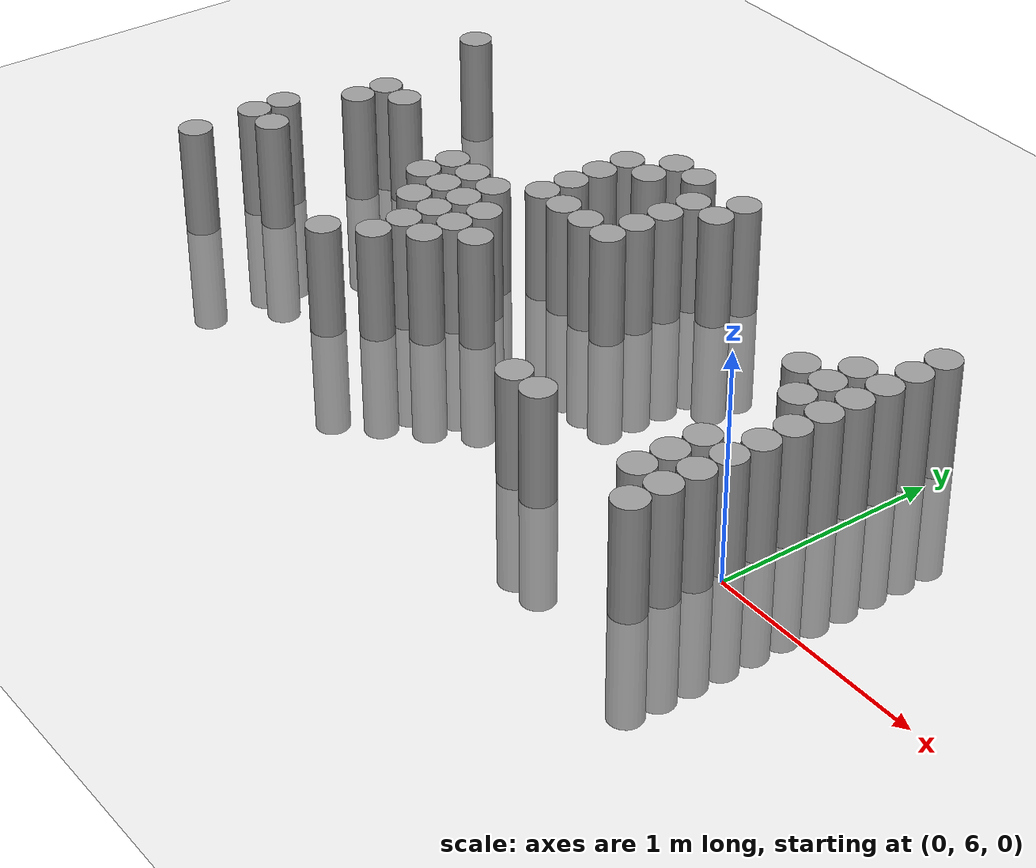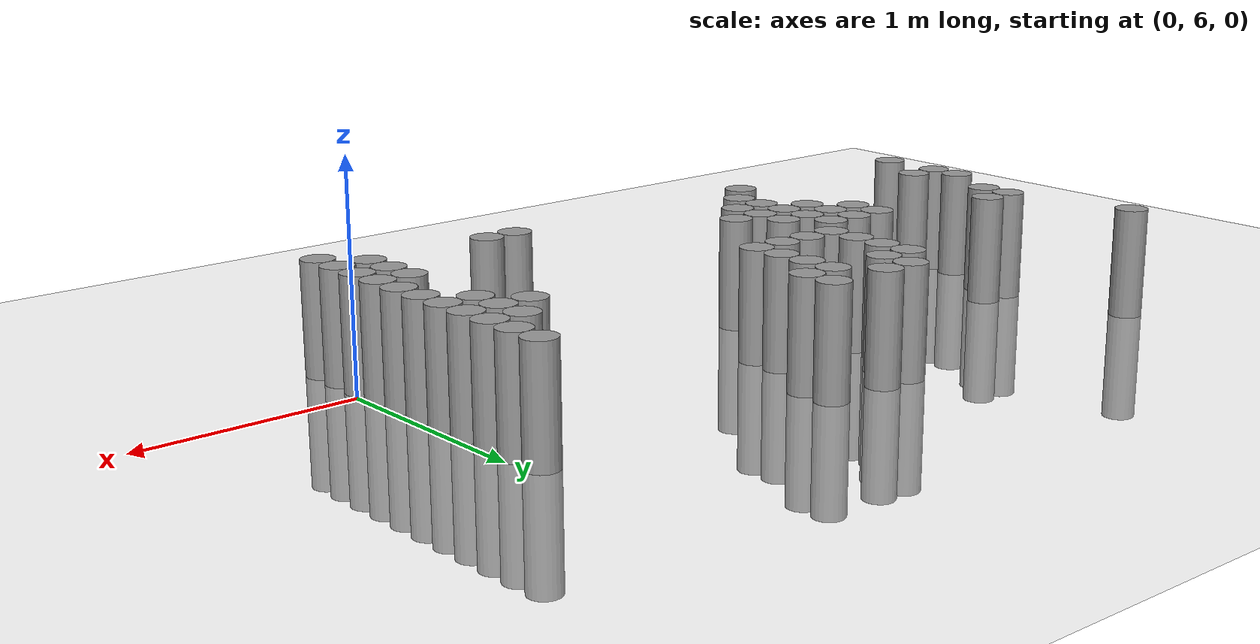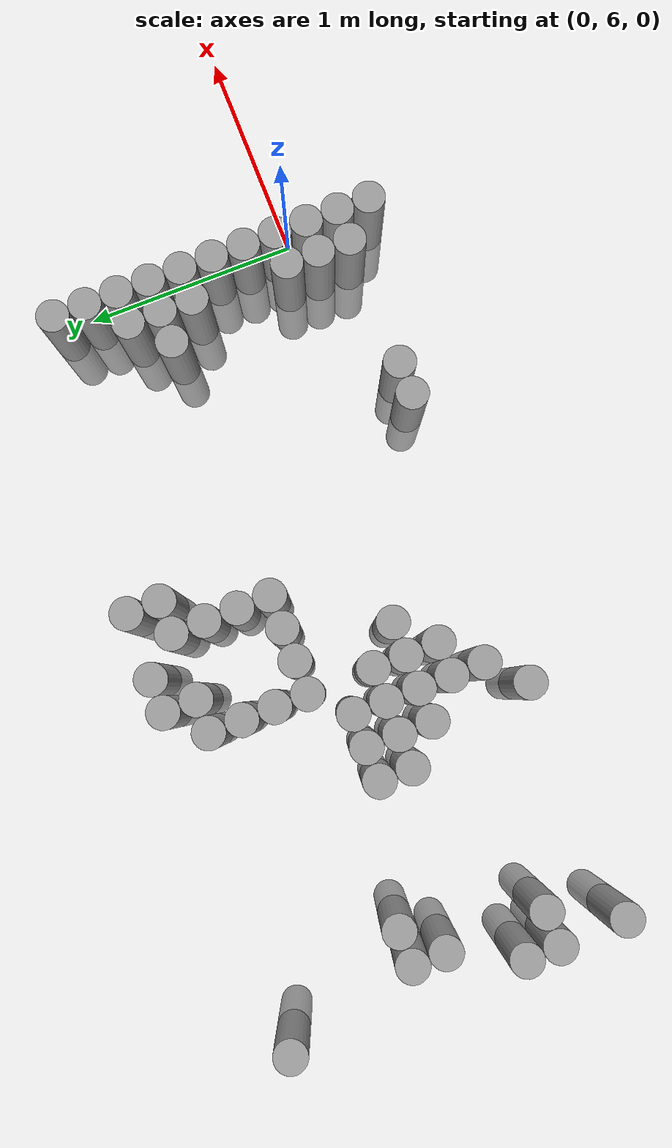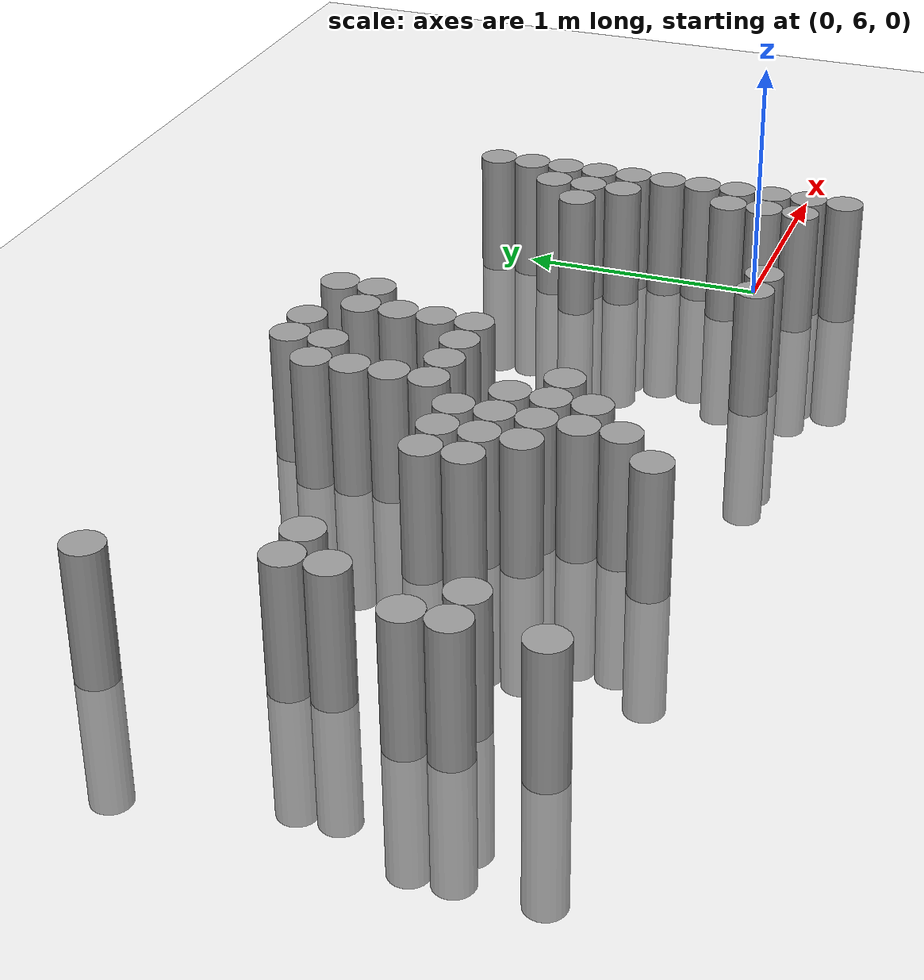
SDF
<sdf version="1.6">
 <world name="default">
  <model name="ground_plane">
   <static>1</static>
   <static>1</static>
   <link name="link">
    <collision name="collision">
     <geometry><plane><normal>0 0 1</normal><size>100 100</size></plane></geometry>
     <surface><friction><ode><mu>100</mu><mu2>50</mu2></ode></friction></surface>
    </collision>
    <visual name="visual">
     <cast_shadows>0</cast_shadows>
     <geometry><plane><normal>0 0 1</normal><size>100 100</size></plane></geometry>
     <material>
      <script><uri>file://media/materials/scripts/gazebo.material</uri><name>Gazebo/Grey</name></script>
     </material>
    </visual>
   </link>
  </model>
  <model name="unit_cylinder_172">
   <static>1</static>
   <pose>-3.375000 5.775000 0.000000 0.000000 0.000000 0.000000</pose>
   <link name="link">
    <inertial>
     <mass>1</mass>
     <inertia><ixx>0.145833</ixx><ixy>0</ixy><ixz>0</ixz><iyy>0.145833</iyy><iyz>0</iyz><izz>0.125</izz></inertia>
    </inertial>
    <collision name="collision">
     <geometry><cylinder><radius>0.075000</radius><length>1</length></cylinder></geometry>
    </collision>
    <visual name="visual">
     <geometry><cylinder><radius>0.075000</radius><length>1</length></cylinder></geometry>
     <material>
      <script><name>Gazebo/Grey</name><uri>file://media/materials/scripts/gazebo.material</uri></script>
     </material>
    </visual>
   </link>
  </model>
  <model name="unit_cylinder_173">
   <static>1</static>
   <pose>-3.375000 6.075000 0.000000 0.000000 0.000000 0.000000</pose>
   <link name="link">
    <inertial>
     <mass>1</mass>
     <inertia><ixx>0.145833</ixx><ixy>0</ixy><ixz>0</ixz><iyy>0.145833</iyy><iyz>0</iyz><izz>0.125</izz></inertia>
    </inertial>
    <collision name="collision">
     <geometry><cylinder><radius>0.075000</radius><length>1</length></cylinder></geometry>
    </collision>
    <visual name="visual">
     <geometry><cylinder><radius>0.075000</radius><length>1</length></cylinder></geometry>
     <material>
      <script><name>Gazebo/Grey</name><uri>file://media/materials/scripts/gazebo.material</uri></script>
     </material>
    </visual>
   </link>
  </model>
  <model name="unit_cylinder_174">
   <static>1</static>
   <pose>-3.375000 6.225000 0.000000 0.000000 0.000000 0.000000</pose>
   <link name="link">
    <inertial>
     <mass>1</mass>
     <inertia><ixx>0.145833</ixx><ixy>0</ixy><ixz>0</ixz><iyy>0.145833</iyy><iyz>0</iyz><izz>0.125</izz></inertia>
    </inertial>
    <collision name="collision">
     <geometry><cylinder><radius>0.075000</radius><length>1</length></cylinder></geometry>
    </collision>
    <visual name="visual">
     <geometry><cylinder><radius>0.075000</radius><length>1</length></cylinder></geometry>
     <material>
      <script><name>Gazebo/Grey</name><uri>file://media/materials/scripts/gazebo.material</uri></script>
     </material>
    </visual>
   </link>
  </model>
  <model name="unit_cylinder_175">
   <static>1</static>
   <pose>-3.375000 7.275000 0.000000 0.000000 0.000000 0.000000</pose>
   <link name="link">
    <inertial>
     <mass>1</mass>
     <inertia><ixx>0.145833</ixx><ixy>0</ixy><ixz>0</ixz><iyy>0.145833</iyy><iyz>0</iyz><izz>0.125</izz></inertia>
    </inertial>
    <collision name="collision">
     <geometry><cylinder><radius>0.075000</radius><length>1</length></cylinder></geometry>
    </collision>
    <visual name="visual">
     <geometry><cylinder><radius>0.075000</radius><length>1</length></cylinder></geometry>
     <material>
      <script><name>Gazebo/Grey</name><uri>file://media/materials/scripts/gazebo.material</uri></script>
     </material>
    </visual>
   </link>
  </model>
  <model name="unit_cylinder_180">
   <static>1</static>
   <pose>-3.225000 6.075000 0.000000 0.000000 0.000000 0.000000</pose>
   <link name="link">
    <inertial>
     <mass>1</mass>
     <inertia><ixx>0.145833</ixx><ixy>0</ixy><ixz>0</ixz><iyy>0.145833</iyy><iyz>0</iyz><izz>0.125</izz></inertia>
    </inertial>
    <collision name="collision">
     <geometry><cylinder><radius>0.075000</radius><length>1</length></cylinder></geometry>
    </collision>
    <visual name="visual">
     <geometry><cylinder><radius>0.075000</radius><length>1</length></cylinder></geometry>
     <material>
      <script><name>Gazebo/Grey</name><uri>file://media/materials/scripts/gazebo.material</uri></script>
     </material>
    </visual>
   </link>
  </model>
  <model name="unit_cylinder_181">
   <static>1</static>
   <pose>-3.225000 6.525000 0.000000 0.000000 0.000000 0.000000</pose>
   <link name="link">
    <inertial>
     <mass>1</mass>
     <inertia><ixx>0.145833</ixx><ixy>0</ixy><ixz>0</ixz><iyy>0.145833</iyy><iyz>0</iyz><izz>0.125</izz></inertia>
    </inertial>
    <collision name="collision">
     <geometry><cylinder><radius>0.075000</radius><length>1</length></cylinder></geometry>
    </collision>
    <visual name="visual">
     <geometry><cylinder><radius>0.075000</radius><length>1</length></cylinder></geometry>
     <material>
      <script><name>Gazebo/Grey</name><uri>file://media/materials/scripts/gazebo.material</uri></script>
     </material>
    </visual>
   </link>
  </model>
  <model name="unit_cylinder_182">
   <static>1</static>
   <pose>-3.225000 6.675000 0.000000 0.000000 0.000000 0.000000</pose>
   <link name="link">
    <inertial>
     <mass>1</mass>
     <inertia><ixx>0.145833</ixx><ixy>0</ixy><ixz>0</ixz><iyy>0.145833</iyy><iyz>0</iyz><izz>0.125</izz></inertia>
    </inertial>
    <collision name="collision">
     <geometry><cylinder><radius>0.075000</radius><length>1</length></cylinder></geometry>
    </collision>
    <visual name="visual">
     <geometry><cylinder><radius>0.075000</radius><length>1</length></cylinder></geometry>
     <material>
      <script><name>Gazebo/Grey</name><uri>file://media/materials/scripts/gazebo.material</uri></script>
     </material>
    </visual>
   </link>
  </model>
  <model name="unit_cylinder_185">
   <static>1</static>
   <pose>-3.075000 6.675000 0.000000 0.000000 0.000000 0.000000</pose>
   <link name="link">
    <inertial>
     <mass>1</mass>
     <inertia><ixx>0.145833</ixx><ixy>0</ixy><ixz>0</ixz><iyy>0.145833</iyy><iyz>0</iyz><izz>0.125</izz></inertia>
    </inertial>
    <collision name="collision">
     <geometry><cylinder><radius>0.075000</radius><length>1</length></cylinder></geometry>
    </collision>
    <visual name="visual">
     <geometry><cylinder><radius>0.075000</radius><length>1</length></cylinder></geometry>
     <material>
      <script><name>Gazebo/Grey</name><uri>file://media/materials/scripts/gazebo.material</uri></script>
     </material>
    </visual>
   </link>
  </model>
  <model name="unit_cylinder_190">
   <static>1</static>
   <pose>-2.475000 6.375000 0.000000 0.000000 0.000000 0.000000</pose>
   <link name="link">
    <inertial>
     <mass>1</mass>
     <inertia><ixx>0.145833</ixx><ixy>0</ixy><ixz>0</ixz><iyy>0.145833</iyy><iyz>0</iyz><izz>0.125</izz></inertia>
    </inertial>
    <collision name="collision">
     <geometry><cylinder><radius>0.075000</radius><length>1</length></cylinder></geometry>
    </collision>
    <visual name="visual">
     <geometry><cylinder><radius>0.075000</radius><length>1</length></cylinder></geometry>
     <material>
      <script><name>Gazebo/Grey</name><uri>file://media/materials/scripts/gazebo.material</uri></script>
     </material>
    </visual>
   </link>
  </model>
  <model name="unit_cylinder_191">
   <static>1</static>
   <pose>-2.475000 6.525000 0.000000 0.000000 0.000000 0.000000</pose>
   <link name="link">
    <inertial>
     <mass>1</mass>
     <inertia><ixx>0.145833</ixx><ixy>0</ixy><ixz>0</ixz><iyy>0.145833</iyy><iyz>0</iyz><izz>0.125</izz></inertia>
    </inertial>
    <collision name="collision">
     <geometry><cylinder><radius>0.075000</radius><length>1</length></cylinder></geometry>
    </collision>
    <visual name="visual">
     <geometry><cylinder><radius>0.075000</radius><length>1</length></cylinder></geometry>
     <material>
      <script><name>Gazebo/Grey</name><uri>file://media/materials/scripts/gazebo.material</uri></script>
     </material>
    </visual>
   </link>
  </model>
  <model name="unit_cylinder_195">
   <static>1</static>
   <pose>-2.325000 5.775000 0.000000 0.000000 0.000000 0.000000</pose>
   <link name="link">
    <inertial>
     <mass>1</mass>
     <inertia><ixx>0.145833</ixx><ixy>0</ixy><ixz>0</ixz><iyy>0.145833</iyy><iyz>0</iyz><izz>0.125</izz></inertia>
    </inertial>
    <collision name="collision">
     <geometry><cylinder><radius>0.075000</radius><length>1</length></cylinder></geometry>
    </collision>
    <visual name="visual">
     <geometry><cylinder><radius>0.075000</radius><length>1</length></cylinder></geometry>
     <material>
      <script><name>Gazebo/Grey</name><uri>file://media/materials/scripts/gazebo.material</uri></script>
     </material>
    </visual>
   </link>
  </model>
  <model name="unit_cylinder_196">
   <static>1</static>
   <pose>-2.325000 6.225000 0.000000 0.000000 0.000000 0.000000</pose>
   <link name="link">
    <inertial>
     <mass>1</mass>
     <inertia><ixx>0.145833</ixx><ixy>0</ixy><ixz>0</ixz><iyy>0.145833</iyy><iyz>0</iyz><izz>0.125</izz></inertia>
    </inertial>
    <collision name="collision">
     <geometry><cylinder><radius>0.075000</radius><length>1</length></cylinder></geometry>
    </collision>
    <visual name="visual">
     <geometry><cylinder><radius>0.075000</radius><length>1</length></cylinder></geometry>
     <material>
      <script><name>Gazebo/Grey</name><uri>file://media/materials/scripts/gazebo.material</uri></script>
     </material>
    </visual>
   </link>
  </model>
  <model name="unit_cylinder_197">
   <static>1</static>
   <pose>-2.325000 6.375000 0.000000 0.000000 0.000000 0.000000</pose>
   <link name="link">
    <inertial>
     <mass>1</mass>
     <inertia><ixx>0.145833</ixx><ixy>0</ixy><ixz>0</ixz><iyy>0.145833</iyy><iyz>0</iyz><izz>0.125</izz></inertia>
    </inertial>
    <collision name="collision">
     <geometry><cylinder><radius>0.075000</radius><length>1</length></cylinder></geometry>
    </collision>
    <visual name="visual">
     <geometry><cylinder><radius>0.075000</radius><length>1</length></cylinder></geometry>
     <material>
      <script><name>Gazebo/Grey</name><uri>file://media/materials/scripts/gazebo.material</uri></script>
     </material>
    </visual>
   </link>
  </model>
  <model name="unit_cylinder_198">
   <static>1</static>
   <pose>-2.325000 6.525000 0.000000 0.000000 0.000000 0.000000</pose>
   <link name="link">
    <inertial>
     <mass>1</mass>
     <inertia><ixx>0.145833</ixx><ixy>0</ixy><ixz>0</ixz><iyy>0.145833</iyy><iyz>0</iyz><izz>0.125</izz></inertia>
    </inertial>
    <collision name="collision">
     <geometry><cylinder><radius>0.075000</radius><length>1</length></cylinder></geometry>
    </collision>
    <visual name="visual">
     <geometry><cylinder><radius>0.075000</radius><length>1</length></cylinder></geometry>
     <material>
      <script><name>Gazebo/Grey</name><uri>file://media/materials/scripts/gazebo.material</uri></script>
     </material>
    </visual>
   </link>
  </model>
  <model name="unit_cylinder_204">
   <static>1</static>
   <pose>-2.175000 5.925000 0.000000 0.000000 0.000000 0.000000</pose>
   <link name="link">
    <inertial>
     <mass>1</mass>
     <inertia><ixx>0.145833</ixx><ixy>0</ixy><ixz>0</ixz><iyy>0.145833</iyy><iyz>0</iyz><izz>0.125</izz></inertia>
    </inertial>
    <collision name="collision">
     <geometry><cylinder><radius>0.075000</radius><length>1</length></cylinder></geometry>
    </collision>
    <visual name="visual">
     <geometry><cylinder><radius>0.075000</radius><length>1</length></cylinder></geometry>
     <material>
      <script><name>Gazebo/Grey</name><uri>file://media/materials/scripts/gazebo.material</uri></script>
     </material>
    </visual>
   </link>
  </model>
  <model name="unit_cylinder_205">
   <static>1</static>
   <pose>-2.175000 6.075000 0.000000 0.000000 0.000000 0.000000</pose>
   <link name="link">
    <inertial>
     <mass>1</mass>
     <inertia><ixx>0.145833</ixx><ixy>0</ixy><ixz>0</ixz><iyy>0.145833</iyy><iyz>0</iyz><izz>0.125</izz></inertia>
    </inertial>
    <collision name="collision">
     <geometry><cylinder><radius>0.075000</radius><length>1</length></cylinder></geometry>
    </collision>
    <visual name="visual">
     <geometry><cylinder><radius>0.075000</radius><length>1</length></cylinder></geometry>
     <material>
      <script><name>Gazebo/Grey</name><uri>file://media/materials/scripts/gazebo.material</uri></script>
     </material>
    </visual>
   </link>
  </model>
  <model name="unit_cylinder_206">
   <static>1</static>
   <pose>-2.175000 6.225000 0.000000 0.000000 0.000000 0.000000</pose>
   <link name="link">
    <inertial>
     <mass>1</mass>
     <inertia><ixx>0.145833</ixx><ixy>0</ixy><ixz>0</ixz><iyy>0.145833</iyy><iyz>0</iyz><izz>0.125</izz></inertia>
    </inertial>
    <collision name="collision">
     <geometry><cylinder><radius>0.075000</radius><length>1</length></cylinder></geometry>
    </collision>
    <visual name="visual">
     <geometry><cylinder><radius>0.075000</radius><length>1</length></cylinder></geometry>
     <material>
      <script><name>Gazebo/Grey</name><uri>file://media/materials/scripts/gazebo.material</uri></script>
     </material>
    </visual>
   </link>
  </model>
  <model name="unit_cylinder_207">
   <static>1</static>
   <pose>-2.175000 6.375000 0.000000 0.000000 0.000000 0.000000</pose>
   <link name="link">
    <inertial>
     <mass>1</mass>
     <inertia><ixx>0.145833</ixx><ixy>0</ixy><ixz>0</ixz><iyy>0.145833</iyy><iyz>0</iyz><izz>0.125</izz></inertia>
    </inertial>
    <collision name="collision">
     <geometry><cylinder><radius>0.075000</radius><length>1</length></cylinder></geometry>
    </collision>
    <visual name="visual">
     <geometry><cylinder><radius>0.075000</radius><length>1</length></cylinder></geometry>
     <material>
      <script><name>Gazebo/Grey</name><uri>file://media/materials/scripts/gazebo.material</uri></script>
     </material>
    </visual>
   </link>
  </model>
  <model name="unit_cylinder_208">
   <static>1</static>
   <pose>-2.175000 6.525000 0.000000 0.000000 0.000000 0.000000</pose>
   <link name="link">
    <inertial>
     <mass>1</mass>
     <inertia><ixx>0.145833</ixx><ixy>0</ixy><ixz>0</ixz><iyy>0.145833</iyy><iyz>0</iyz><izz>0.125</izz></inertia>
    </inertial>
    <collision name="collision">
     <geometry><cylinder><radius>0.075000</radius><length>1</length></cylinder></geometry>
    </collision>
    <visual name="visual">
     <geometry><cylinder><radius>0.075000</radius><length>1</length></cylinder></geometry>
     <material>
      <script><name>Gazebo/Grey</name><uri>file://media/materials/scripts/gazebo.material</uri></script>
     </material>
    </visual>
   </link>
  </model>
  <model name="unit_cylinder_212">
   <static>1</static>
   <pose>-2.025000 6.075000 0.000000 0.000000 0.000000 0.000000</pose>
   <link name="link">
    <inertial>
     <mass>1</mass>
     <inertia><ixx>0.145833</ixx><ixy>0</ixy><ixz>0</ixz><iyy>0.145833</iyy><iyz>0</iyz><izz>0.125</izz></inertia>
    </inertial>
    <collision name="collision">
     <geometry><cylinder><radius>0.075000</radius><length>1</length></cylinder></geometry>
    </collision>
    <visual name="visual">
     <geometry><cylinder><radius>0.075000</radius><length>1</length></cylinder></geometry>
     <material>
      <script><name>Gazebo/Grey</name><uri>file://media/materials/scripts/gazebo.material</uri></script>
     </material>
    </visual>
   </link>
  </model>
  <model name="unit_cylinder_213">
   <static>1</static>
   <pose>-2.025000 6.225000 0.000000 0.000000 0.000000 0.000000</pose>
   <link name="link">
    <inertial>
     <mass>1</mass>
     <inertia><ixx>0.145833</ixx><ixy>0</ixy><ixz>0</ixz><iyy>0.145833</iyy><iyz>0</iyz><izz>0.125</izz></inertia>
    </inertial>
    <collision name="collision">
     <geometry><cylinder><radius>0.075000</radius><length>1</length></cylinder></geometry>
    </collision>
    <visual name="visual">
     <geometry><cylinder><radius>0.075000</radius><length>1</length></cylinder></geometry>
     <material>
      <script><name>Gazebo/Grey</name><uri>file://media/materials/scripts/gazebo.material</uri></script>
     </material>
    </visual>
   </link>
  </model>
  <model name="unit_cylinder_214">
   <static>1</static>
   <pose>-2.025000 6.375000 0.000000 0.000000 0.000000 0.000000</pose>
   <link name="link">
    <inertial>
     <mass>1</mass>
     <inertia><ixx>0.145833</ixx><ixy>0</ixy><ixz>0</ixz><iyy>0.145833</iyy><iyz>0</iyz><izz>0.125</izz></inertia>
    </inertial>
    <collision name="collision">
     <geometry><cylinder><radius>0.075000</radius><length>1</length></cylinder></geometry>
    </collision>
    <visual name="visual">
     <geometry><cylinder><radius>0.075000</radius><length>1</length></cylinder></geometry>
     <material>
      <script><name>Gazebo/Grey</name><uri>file://media/materials/scripts/gazebo.material</uri></script>
     </material>
    </visual>
   </link>
  </model>
  <model name="unit_cylinder_215">
   <static>1</static>
   <pose>-2.025000 6.675000 0.000000 0.000000 0.000000 0.000000</pose>
   <link name="link">
    <inertial>
     <mass>1</mass>
     <inertia><ixx>0.145833</ixx><ixy>0</ixy><ixz>0</ixz><iyy>0.145833</iyy><iyz>0</iyz><izz>0.125</izz></inertia>
    </inertial>
    <collision name="collision">
     <geometry><cylinder><radius>0.075000</radius><length>1</length></cylinder></geometry>
    </collision>
    <visual name="visual">
     <geometry><cylinder><radius>0.075000</radius><length>1</length></cylinder></geometry>
     <material>
      <script><name>Gazebo/Grey</name><uri>file://media/materials/scripts/gazebo.material</uri></script>
     </material>
    </visual>
   </link>
  </model>
  <model name="unit_cylinder_216">
   <static>1</static>
   <pose>-2.025000 6.825000 0.000000 0.000000 0.000000 0.000000</pose>
   <link name="link">
    <inertial>
     <mass>1</mass>
     <inertia><ixx>0.145833</ixx><ixy>0</ixy><ixz>0</ixz><iyy>0.145833</iyy><iyz>0</iyz><izz>0.125</izz></inertia>
    </inertial>
    <collision name="collision">
     <geometry><cylinder><radius>0.075000</radius><length>1</length></cylinder></geometry>
    </collision>
    <visual name="visual">
     <geometry><cylinder><radius>0.075000</radius><length>1</length></cylinder></geometry>
     <material>
      <script><name>Gazebo/Grey</name><uri>file://media/materials/scripts/gazebo.material</uri></script>
     </material>
    </visual>
   </link>
  </model>
  <model name="unit_cylinder_217">
   <static>1</static>
   <pose>-2.025000 6.975000 0.000000 0.000000 0.000000 0.000000</pose>
   <link name="link">
    <inertial>
     <mass>1</mass>
     <inertia><ixx>0.145833</ixx><ixy>0</ixy><ixz>0</ixz><iyy>0.145833</iyy><iyz>0</iyz><izz>0.125</izz></inertia>
    </inertial>
    <collision name="collision">
     <geometry><cylinder><radius>0.075000</radius><length>1</length></cylinder></geometry>
    </collision>
    <visual name="visual">
     <geometry><cylinder><radius>0.075000</radius><length>1</length></cylinder></geometry>
     <material>
      <script><name>Gazebo/Grey</name><uri>file://media/materials/scripts/gazebo.material</uri></script>
     </material>
    </visual>
   </link>
  </model>
  <model name="unit_cylinder_218">
   <static>1</static>
   <pose>-2.025000 7.125000 0.000000 0.000000 0.000000 0.000000</pose>
   <link name="link">
    <inertial>
     <mass>1</mass>
     <inertia><ixx>0.145833</ixx><ixy>0</ixy><ixz>0</ixz><iyy>0.145833</iyy><iyz>0</iyz><izz>0.125</izz></inertia>
    </inertial>
    <collision name="collision">
     <geometry><cylinder><radius>0.075000</radius><length>1</length></cylinder></geometry>
    </collision>
    <visual name="visual">
     <geometry><cylinder><radius>0.075000</radius><length>1</length></cylinder></geometry>
     <material>
      <script><name>Gazebo/Grey</name><uri>file://media/materials/scripts/gazebo.material</uri></script>
     </material>
    </visual>
   </link>
  </model>
  <model name="unit_cylinder_221">
   <static>1</static>
   <pose>-1.875000 6.225000 0.000000 0.000000 0.000000 0.000000</pose>
   <link name="link">
    <inertial>
     <mass>1</mass>
     <inertia><ixx>0.145833</ixx><ixy>0</ixy><ixz>0</ixz><iyy>0.145833</iyy><iyz>0</iyz><izz>0.125</izz></inertia>
    </inertial>
    <collision name="collision">
     <geometry><cylinder><radius>0.075000</radius><length>1</length></cylinder></geometry>
    </collision>
    <visual name="visual">
     <geometry><cylinder><radius>0.075000</radius><length>1</length></cylinder></geometry>
     <material>
      <script><name>Gazebo/Grey</name><uri>file://media/materials/scripts/gazebo.material</uri></script>
     </material>
    </visual>
   </link>
  </model>
  <model name="unit_cylinder_222">
   <static>1</static>
   <pose>-1.875000 6.675000 0.000000 0.000000 0.000000 0.000000</pose>
   <link name="link">
    <inertial>
     <mass>1</mass>
     <inertia><ixx>0.145833</ixx><ixy>0</ixy><ixz>0</ixz><iyy>0.145833</iyy><iyz>0</iyz><izz>0.125</izz></inertia>
    </inertial>
    <collision name="collision">
     <geometry><cylinder><radius>0.075000</radius><length>1</length></cylinder></geometry>
    </collision>
    <visual name="visual">
     <geometry><cylinder><radius>0.075000</radius><length>1</length></cylinder></geometry>
     <material>
      <script><name>Gazebo/Grey</name><uri>file://media/materials/scripts/gazebo.material</uri></script>
     </material>
    </visual>
   </link>
  </model>
  <model name="unit_cylinder_223">
   <static>1</static>
   <pose>-1.875000 7.125000 0.000000 0.000000 0.000000 0.000000</pose>
   <link name="link">
    <inertial>
     <mass>1</mass>
     <inertia><ixx>0.145833</ixx><ixy>0</ixy><ixz>0</ixz><iyy>0.145833</iyy><iyz>0</iyz><izz>0.125</izz></inertia>
    </inertial>
    <collision name="collision">
     <geometry><cylinder><radius>0.075000</radius><length>1</length></cylinder></geometry>
    </collision>
    <visual name="visual">
     <geometry><cylinder><radius>0.075000</radius><length>1</length></cylinder></geometry>
     <material>
      <script><name>Gazebo/Grey</name><uri>file://media/materials/scripts/gazebo.material</uri></script>
     </material>
    </visual>
   </link>
  </model>
  <model name="unit_cylinder_224">
   <static>1</static>
   <pose>-1.875000 7.275000 0.000000 0.000000 0.000000 0.000000</pose>
   <link name="link">
    <inertial>
     <mass>1</mass>
     <inertia><ixx>0.145833</ixx><ixy>0</ixy><ixz>0</ixz><iyy>0.145833</iyy><iyz>0</iyz><izz>0.125</izz></inertia>
    </inertial>
    <collision name="collision">
     <geometry><cylinder><radius>0.075000</radius><length>1</length></cylinder></geometry>
    </collision>
    <visual name="visual">
     <geometry><cylinder><radius>0.075000</radius><length>1</length></cylinder></geometry>
     <material>
      <script><name>Gazebo/Grey</name><uri>file://media/materials/scripts/gazebo.material</uri></script>
     </material>
    </visual>
   </link>
  </model>
  <model name="unit_cylinder_226">
   <static>1</static>
   <pose>-1.725000 6.675000 0.000000 0.000000 0.000000 0.000000</pose>
   <link name="link">
    <inertial>
     <mass>1</mass>
     <inertia><ixx>0.145833</ixx><ixy>0</ixy><ixz>0</ixz><iyy>0.145833</iyy><iyz>0</iyz><izz>0.125</izz></inertia>
    </inertial>
    <collision name="collision">
     <geometry><cylinder><radius>0.075000</radius><length>1</length></cylinder></geometry>
    </collision>
    <visual name="visual">
     <geometry><cylinder><radius>0.075000</radius><length>1</length></cylinder></geometry>
     <material>
      <script><name>Gazebo/Grey</name><uri>file://media/materials/scripts/gazebo.material</uri></script>
     </material>
    </visual>
   </link>
  </model>
  <model name="unit_cylinder_227">
   <static>1</static>
   <pose>-1.725000 7.275000 0.000000 0.000000 0.000000 0.000000</pose>
   <link name="link">
    <inertial>
     <mass>1</mass>
     <inertia><ixx>0.145833</ixx><ixy>0</ixy><ixz>0</ixz><iyy>0.145833</iyy><iyz>0</iyz><izz>0.125</izz></inertia>
    </inertial>
    <collision name="collision">
     <geometry><cylinder><radius>0.075000</radius><length>1</length></cylinder></geometry>
    </collision>
    <visual name="visual">
     <geometry><cylinder><radius>0.075000</radius><length>1</length></cylinder></geometry>
     <material>
      <script><name>Gazebo/Grey</name><uri>file://media/materials/scripts/gazebo.material</uri></script>
     </material>
    </visual>
   </link>
  </model>
  <model name="unit_cylinder_229">
   <static>1</static>
   <pose>-1.575000 6.675000 0.000000 0.000000 0.000000 0.000000</pose>
   <link name="link">
    <inertial>
     <mass>1</mass>
     <inertia><ixx>0.145833</ixx><ixy>0</ixy><ixz>0</ixz><iyy>0.145833</iyy><iyz>0</iyz><izz>0.125</izz></inertia>
    </inertial>
    <collision name="collision">
     <geometry><cylinder><radius>0.075000</radius><length>1</length></cylinder></geometry>
    </collision>
    <visual name="visual">
     <geometry><cylinder><radius>0.075000</radius><length>1</length></cylinder></geometry>
     <material>
      <script><name>Gazebo/Grey</name><uri>file://media/materials/scripts/gazebo.material</uri></script>
     </material>
    </visual>
   </link>
  </model>
  <model name="unit_cylinder_230">
   <static>1</static>
   <pose>-1.575000 6.825000 0.000000 0.000000 0.000000 0.000000</pose>
   <link name="link">
    <inertial>
     <mass>1</mass>
     <inertia><ixx>0.145833</ixx><ixy>0</ixy><ixz>0</ixz><iyy>0.145833</iyy><iyz>0</iyz><izz>0.125</izz></inertia>
    </inertial>
    <collision name="collision">
     <geometry><cylinder><radius>0.075000</radius><length>1</length></cylinder></geometry>
    </collision>
    <visual name="visual">
     <geometry><cylinder><radius>0.075000</radius><length>1</length></cylinder></geometry>
     <material>
      <script><name>Gazebo/Grey</name><uri>file://media/materials/scripts/gazebo.material</uri></script>
     </material>
    </visual>
   </link>
  </model>
  <model name="unit_cylinder_231">
   <static>1</static>
   <pose>-1.575000 6.975000 0.000000 0.000000 0.000000 0.000000</pose>
   <link name="link">
    <inertial>
     <mass>1</mass>
     <inertia><ixx>0.145833</ixx><ixy>0</ixy><ixz>0</ixz><iyy>0.145833</iyy><iyz>0</iyz><izz>0.125</izz></inertia>
    </inertial>
    <collision name="collision">
     <geometry><cylinder><radius>0.075000</radius><length>1</length></cylinder></geometry>
    </collision>
    <visual name="visual">
     <geometry><cylinder><radius>0.075000</radius><length>1</length></cylinder></geometry>
     <material>
      <script><name>Gazebo/Grey</name><uri>file://media/materials/scripts/gazebo.material</uri></script>
     </material>
    </visual>
   </link>
  </model>
  <model name="unit_cylinder_232">
   <static>1</static>
   <pose>-1.575000 7.125000 0.000000 0.000000 0.000000 0.000000</pose>
   <link name="link">
    <inertial>
     <mass>1</mass>
     <inertia><ixx>0.145833</ixx><ixy>0</ixy><ixz>0</ixz><iyy>0.145833</iyy><iyz>0</iyz><izz>0.125</izz></inertia>
    </inertial>
    <collision name="collision">
     <geometry><cylinder><radius>0.075000</radius><length>1</length></cylinder></geometry>
    </collision>
    <visual name="visual">
     <geometry><cylinder><radius>0.075000</radius><length>1</length></cylinder></geometry>
     <material>
      <script><name>Gazebo/Grey</name><uri>file://media/materials/scripts/gazebo.material</uri></script>
     </material>
    </visual>
   </link>
  </model>
  <model name="unit_cylinder_234">
   <static>1</static>
   <pose>-1.425000 7.125000 0.000000 0.000000 0.000000 0.000000</pose>
   <link name="link">
    <inertial>
     <mass>1</mass>
     <inertia><ixx>0.145833</ixx><ixy>0</ixy><ixz>0</ixz><iyy>0.145833</iyy><iyz>0</iyz><izz>0.125</izz></inertia>
    </inertial>
    <collision name="collision">
     <geometry><cylinder><radius>0.075000</radius><length>1</length></cylinder></geometry>
    </collision>
    <visual name="visual">
     <geometry><cylinder><radius>0.075000</radius><length>1</length></cylinder></geometry>
     <material>
      <script><name>Gazebo/Grey</name><uri>file://media/materials/scripts/gazebo.material</uri></script>
     </material>
    </visual>
   </link>
  </model>
  <model name="unit_cylinder_235">
   <static>1</static>
   <pose>-1.425000 7.275000 0.000000 0.000000 0.000000 0.000000</pose>
   <link name="link">
    <inertial>
     <mass>1</mass>
     <inertia><ixx>0.145833</ixx><ixy>0</ixy><ixz>0</ixz><iyy>0.145833</iyy><iyz>0</iyz><izz>0.125</izz></inertia>
    </inertial>
    <collision name="collision">
     <geometry><cylinder><radius>0.075000</radius><length>1</length></cylinder></geometry>
    </collision>
    <visual name="visual">
     <geometry><cylinder><radius>0.075000</radius><length>1</length></cylinder></geometry>
     <material>
      <script><name>Gazebo/Grey</name><uri>file://media/materials/scripts/gazebo.material</uri></script>
     </material>
    </visual>
   </link>
  </model>
  <model name="unit_cylinder_238">
   <static>1</static>
   <pose>-0.975000 5.775000 0.000000 0.000000 0.000000 0.000000</pose>
   <link name="link">
    <inertial>
     <mass>1</mass>
     <inertia><ixx>0.145833</ixx><ixy>0</ixy><ixz>0</ixz><iyy>0.145833</iyy><iyz>0</iyz><izz>0.125</izz></inertia>
    </inertial>
    <collision name="collision">
     <geometry><cylinder><radius>0.075000</radius><length>1</length></cylinder></geometry>
    </collision>
    <visual name="visual">
     <geometry><cylinder><radius>0.075000</radius><length>1</length></cylinder></geometry>
     <material>
      <script><name>Gazebo/Grey</name><uri>file://media/materials/scripts/gazebo.material</uri></script>
     </material>
    </visual>
   </link>
  </model>
  <model name="unit_cylinder_240">
   <static>1</static>
   <pose>-0.825000 5.775000 0.000000 0.000000 0.000000 0.000000</pose>
   <link name="link">
    <inertial>
     <mass>1</mass>
     <inertia><ixx>0.145833</ixx><ixy>0</ixy><ixz>0</ixz><iyy>0.145833</iyy><iyz>0</iyz><izz>0.125</izz></inertia>
    </inertial>
    <collision name="collision">
     <geometry><cylinder><radius>0.075000</radius><length>1</length></cylinder></geometry>
    </collision>
    <visual name="visual">
     <geometry><cylinder><radius>0.075000</radius><length>1</length></cylinder></geometry>
     <material>
      <script><name>Gazebo/Grey</name><uri>file://media/materials/scripts/gazebo.material</uri></script>
     </material>
    </visual>
   </link>
  </model>
  <model name="unit_cylinder_243">
   <static>1</static>
   <pose>-0.375000 6.675000 0.000000 0.000000 0.000000 0.000000</pose>
   <link name="link">
    <inertial>
     <mass>1</mass>
     <inertia><ixx>0.145833</ixx><ixy>0</ixy><ixz>0</ixz><iyy>0.145833</iyy><iyz>0</iyz><izz>0.125</izz></inertia>
    </inertial>
    <collision name="collision">
     <geometry><cylinder><radius>0.075000</radius><length>1</length></cylinder></geometry>
    </collision>
    <visual name="visual">
     <geometry><cylinder><radius>0.075000</radius><length>1</length></cylinder></geometry>
     <material>
      <script><name>Gazebo/Grey</name><uri>file://media/materials/scripts/gazebo.material</uri></script>
     </material>
    </visual>
   </link>
  </model>
  <model name="unit_cylinder_249">
   <static>1</static>
   <pose>-0.225000 5.775000 0.000000 0.000000 0.000000 0.000000</pose>
   <link name="link">
    <inertial>
     <mass>1</mass>
     <inertia><ixx>0.145833</ixx><ixy>0</ixy><ixz>0</ixz><iyy>0.145833</iyy><iyz>0</iyz><izz>0.125</izz></inertia>
    </inertial>
    <collision name="collision">
     <geometry><cylinder><radius>0.075000</radius><length>1</length></cylinder></geometry>
    </collision>
    <visual name="visual">
     <geometry><cylinder><radius>0.075000</radius><length>1</length></cylinder></geometry>
     <material>
      <script><name>Gazebo/Grey</name><uri>file://media/materials/scripts/gazebo.material</uri></script>
     </material>
    </visual>
   </link>
  </model>
  <model name="unit_cylinder_250">
   <static>1</static>
   <pose>-0.225000 5.925000 0.000000 0.000000 0.000000 0.000000</pose>
   <link name="link">
    <inertial>
     <mass>1</mass>
     <inertia><ixx>0.145833</ixx><ixy>0</ixy><ixz>0</ixz><iyy>0.145833</iyy><iyz>0</iyz><izz>0.125</izz></inertia>
    </inertial>
    <collision name="collision">
     <geometry><cylinder><radius>0.075000</radius><length>1</length></cylinder></geometry>
    </collision>
    <visual name="visual">
     <geometry><cylinder><radius>0.075000</radius><length>1</length></cylinder></geometry>
     <material>
      <script><name>Gazebo/Grey</name><uri>file://media/materials/scripts/gazebo.material</uri></script>
     </material>
    </visual>
   </link>
  </model>
  <model name="unit_cylinder_251">
   <static>1</static>
   <pose>-0.225000 6.075000 0.000000 0.000000 0.000000 0.000000</pose>
   <link name="link">
    <inertial>
     <mass>1</mass>
     <inertia><ixx>0.145833</ixx><ixy>0</ixy><ixz>0</ixz><iyy>0.145833</iyy><iyz>0</iyz><izz>0.125</izz></inertia>
    </inertial>
    <collision name="collision">
     <geometry><cylinder><radius>0.075000</radius><length>1</length></cylinder></geometry>
    </collision>
    <visual name="visual">
     <geometry><cylinder><radius>0.075000</radius><length>1</length></cylinder></geometry>
     <material>
      <script><name>Gazebo/Grey</name><uri>file://media/materials/scripts/gazebo.material</uri></script>
     </material>
    </visual>
   </link>
  </model>
  <model name="unit_cylinder_252">
   <static>1</static>
   <pose>-0.225000 6.525000 0.000000 0.000000 0.000000 0.000000</pose>
   <link name="link">
    <inertial>
     <mass>1</mass>
     <inertia><ixx>0.145833</ixx><ixy>0</ixy><ixz>0</ixz><iyy>0.145833</iyy><iyz>0</iyz><izz>0.125</izz></inertia>
    </inertial>
    <collision name="collision">
     <geometry><cylinder><radius>0.075000</radius><length>1</length></cylinder></geometry>
    </collision>
    <visual name="visual">
     <geometry><cylinder><radius>0.075000</radius><length>1</length></cylinder></geometry>
     <material>
      <script><name>Gazebo/Grey</name><uri>file://media/materials/scripts/gazebo.material</uri></script>
     </material>
    </visual>
   </link>
  </model>
  <model name="unit_cylinder_253">
   <static>1</static>
   <pose>-0.225000 6.675000 0.000000 0.000000 0.000000 0.000000</pose>
   <link name="link">
    <inertial>
     <mass>1</mass>
     <inertia><ixx>0.145833</ixx><ixy>0</ixy><ixz>0</ixz><iyy>0.145833</iyy><iyz>0</iyz><izz>0.125</izz></inertia>
    </inertial>
    <collision name="collision">
     <geometry><cylinder><radius>0.075000</radius><length>1</length></cylinder></geometry>
    </collision>
    <visual name="visual">
     <geometry><cylinder><radius>0.075000</radius><length>1</length></cylinder></geometry>
     <material>
      <script><name>Gazebo/Grey</name><uri>file://media/materials/scripts/gazebo.material</uri></script>
     </material>
    </visual>
   </link>
  </model>
  <model name="unit_cylinder_254">
   <static>1</static>
   <pose>-0.225000 6.825000 0.000000 0.000000 0.000000 0.000000</pose>
   <link name="link">
    <inertial>
     <mass>1</mass>
     <inertia><ixx>0.145833</ixx><ixy>0</ixy><ixz>0</ixz><iyy>0.145833</iyy><iyz>0</iyz><izz>0.125</izz></inertia>
    </inertial>
    <collision name="collision">
     <geometry><cylinder><radius>0.075000</radius><length>1</length></cylinder></geometry>
    </collision>
    <visual name="visual">
     <geometry><cylinder><radius>0.075000</radius><length>1</length></cylinder></geometry>
     <material>
      <script><name>Gazebo/Grey</name><uri>file://media/materials/scripts/gazebo.material</uri></script>
     </material>
    </visual>
   </link>
  </model>
  <model name="unit_cylinder_267">
   <static>1</static>
   <pose>-0.075000 5.625000 0.000000 0.000000 0.000000 0.000000</pose>
   <link name="link">
    <inertial>
     <mass>1</mass>
     <inertia><ixx>0.145833</ixx><ixy>0</ixy><ixz>0</ixz><iyy>0.145833</iyy><iyz>0</iyz><izz>0.125</izz></inertia>
    </inertial>
    <collision name="collision">
     <geometry><cylinder><radius>0.075000</radius><length>1</length></cylinder></geometry>
    </collision>
    <visual name="visual">
     <geometry><cylinder><radius>0.075000</radius><length>1</length></cylinder></geometry>
     <material>
      <script><name>Gazebo/Grey</name><uri>file://media/materials/scripts/gazebo.material</uri></script>
     </material>
    </visual>
   </link>
  </model>
  <model name="unit_cylinder_268">
   <static>1</static>
   <pose>-0.075000 5.775000 0.000000 0.000000 0.000000 0.000000</pose>
   <link name="link">
    <inertial>
     <mass>1</mass>
     <inertia><ixx>0.145833</ixx><ixy>0</ixy><ixz>0</ixz><iyy>0.145833</iyy><iyz>0</iyz><izz>0.125</izz></inertia>
    </inertial>
    <collision name="collision">
     <geometry><cylinder><radius>0.075000</radius><length>1</length></cylinder></geometry>
    </collision>
    <visual name="visual">
     <geometry><cylinder><radius>0.075000</radius><length>1</length></cylinder></geometry>
     <material>
      <script><name>Gazebo/Grey</name><uri>file://media/materials/scripts/gazebo.material</uri></script>
     </material>
    </visual>
   </link>
  </model>
  <model name="unit_cylinder_269">
   <static>1</static>
   <pose>-0.075000 5.925000 0.000000 0.000000 0.000000 0.000000</pose>
   <link name="link">
    <inertial>
     <mass>1</mass>
     <inertia><ixx>0.145833</ixx><ixy>0</ixy><ixz>0</ixz><iyy>0.145833</iyy><iyz>0</iyz><izz>0.125</izz></inertia>
    </inertial>
    <collision name="collision">
     <geometry><cylinder><radius>0.075000</radius><length>1</length></cylinder></geometry>
    </collision>
    <visual name="visual">
     <geometry><cylinder><radius>0.075000</radius><length>1</length></cylinder></geometry>
     <material>
      <script><name>Gazebo/Grey</name><uri>file://media/materials/scripts/gazebo.material</uri></script>
     </material>
    </visual>
   </link>
  </model>
  <model name="unit_cylinder_270">
   <static>1</static>
   <pose>-0.075000 6.075000 0.000000 0.000000 0.000000 0.000000</pose>
   <link name="link">
    <inertial>
     <mass>1</mass>
     <inertia><ixx>0.145833</ixx><ixy>0</ixy><ixz>0</ixz><iyy>0.145833</iyy><iyz>0</iyz><izz>0.125</izz></inertia>
    </inertial>
    <collision name="collision">
     <geometry><cylinder><radius>0.075000</radius><length>1</length></cylinder></geometry>
    </collision>
    <visual name="visual">
     <geometry><cylinder><radius>0.075000</radius><length>1</length></cylinder></geometry>
     <material>
      <script><name>Gazebo/Grey</name><uri>file://media/materials/scripts/gazebo.material</uri></script>
     </material>
    </visual>
   </link>
  </model>
  <model name="unit_cylinder_271">
   <static>1</static>
   <pose>-0.075000 6.225000 0.000000 0.000000 0.000000 0.000000</pose>
   <link name="link">
    <inertial>
     <mass>1</mass>
     <inertia><ixx>0.145833</ixx><ixy>0</ixy><ixz>0</ixz><iyy>0.145833</iyy><iyz>0</iyz><izz>0.125</izz></inertia>
    </inertial>
    <collision name="collision">
     <geometry><cylinder><radius>0.075000</radius><length>1</length></cylinder></geometry>
    </collision>
    <visual name="visual">
     <geometry><cylinder><radius>0.075000</radius><length>1</length></cylinder></geometry>
     <material>
      <script><name>Gazebo/Grey</name><uri>file://media/materials/scripts/gazebo.material</uri></script>
     </material>
    </visual>
   </link>
  </model>
  <model name="unit_cylinder_272">
   <static>1</static>
   <pose>-0.075000 6.375000 0.000000 0.000000 0.000000 0.000000</pose>
   <link name="link">
    <inertial>
     <mass>1</mass>
     <inertia><ixx>0.145833</ixx><ixy>0</ixy><ixz>0</ixz><iyy>0.145833</iyy><iyz>0</iyz><izz>0.125</izz></inertia>
    </inertial>
    <collision name="collision">
     <geometry><cylinder><radius>0.075000</radius><length>1</length></cylinder></geometry>
    </collision>
    <visual name="visual">
     <geometry><cylinder><radius>0.075000</radius><length>1</length></cylinder></geometry>
     <material>
      <script><name>Gazebo/Grey</name><uri>file://media/materials/scripts/gazebo.material</uri></script>
     </material>
    </visual>
   </link>
  </model>
  <model name="unit_cylinder_273">
   <static>1</static>
   <pose>-0.075000 6.525000 0.000000 0.000000 0.000000 0.000000</pose>
   <link name="link">
    <inertial>
     <mass>1</mass>
     <inertia><ixx>0.145833</ixx><ixy>0</ixy><ixz>0</ixz><iyy>0.145833</iyy><iyz>0</iyz><izz>0.125</izz></inertia>
    </inertial>
    <collision name="collision">
     <geometry><cylinder><radius>0.075000</radius><length>1</length></cylinder></geometry>
    </collision>
    <visual name="visual">
     <geometry><cylinder><radius>0.075000</radius><length>1</length></cylinder></geometry>
     <material>
      <script><name>Gazebo/Grey</name><uri>file://media/materials/scripts/gazebo.material</uri></script>
     </material>
    </visual>
   </link>
  </model>
  <model name="unit_cylinder_274">
   <static>1</static>
   <pose>-0.075000 6.675000 0.000000 0.000000 0.000000 0.000000</pose>
   <link name="link">
    <inertial>
     <mass>1</mass>
     <inertia><ixx>0.145833</ixx><ixy>0</ixy><ixz>0</ixz><iyy>0.145833</iyy><iyz>0</iyz><izz>0.125</izz></inertia>
    </inertial>
    <collision name="collision">
     <geometry><cylinder><radius>0.075000</radius><length>1</length></cylinder></geometry>
    </collision>
    <visual name="visual">
     <geometry><cylinder><radius>0.075000</radius><length>1</length></cylinder></geometry>
     <material>
      <script><name>Gazebo/Grey</name><uri>file://media/materials/scripts/gazebo.material</uri></script>
     </material>
    </visual>
   </link>
  </model>
  <model name="unit_cylinder_275">
   <static>1</static>
   <pose>-0.075000 6.825000 0.000000 0.000000 0.000000 0.000000</pose>
   <link name="link">
    <inertial>
     <mass>1</mass>
     <inertia><ixx>0.145833</ixx><ixy>0</ixy><ixz>0</ixz><iyy>0.145833</iyy><iyz>0</iyz><izz>0.125</izz></inertia>
    </inertial>
    <collision name="collision">
     <geometry><cylinder><radius>0.075000</radius><length>1</length></cylinder></geometry>
    </collision>
    <visual name="visual">
     <geometry><cylinder><radius>0.075000</radius><length>1</length></cylinder></geometry>
     <material>
      <script><name>Gazebo/Grey</name><uri>file://media/materials/scripts/gazebo.material</uri></script>
     </material>
    </visual>
   </link>
  </model>
  <model name="unit_cylinder_276">
   <static>1</static>
   <pose>-0.075000 6.975000 0.000000 0.000000 0.000000 0.000000</pose>
   <link name="link">
    <inertial>
     <mass>1</mass>
     <inertia><ixx>0.145833</ixx><ixy>0</ixy><ixz>0</ixz><iyy>0.145833</iyy><iyz>0</iyz><izz>0.125</izz></inertia>
    </inertial>
    <collision name="collision">
     <geometry><cylinder><radius>0.075000</radius><length>1</length></cylinder></geometry>
    </collision>
    <visual name="visual">
     <geometry><cylinder><radius>0.075000</radius><length>1</length></cylinder></geometry>
     <material>
      <script><name>Gazebo/Grey</name><uri>file://media/materials/scripts/gazebo.material</uri></script>
     </material>
    </visual>
   </link>
  </model>
  <model name="unit_cylinder_277">
   <static>1</static>
   <pose>-0.075000 7.125000 0.000000 0.000000 0.000000 0.000000</pose>
   <link name="link">
    <inertial>
     <mass>1</mass>
     <inertia><ixx>0.145833</ixx><ixy>0</ixy><ixz>0</ixz><iyy>0.145833</iyy><iyz>0</iyz><izz>0.125</izz></inertia>
    </inertial>
    <collision name="collision">
     <geometry><cylinder><radius>0.075000</radius><length>1</length></cylinder></geometry>
    </collision>
    <visual name="visual">
     <geometry><cylinder><radius>0.075000</radius><length>1</length></cylinder></geometry>
     <material>
      <script><name>Gazebo/Grey</name><uri>file://media/materials/scripts/gazebo.material</uri></script>
     </material>
    </visual>
   </link>
  </model>
 </world>
</sdf>
